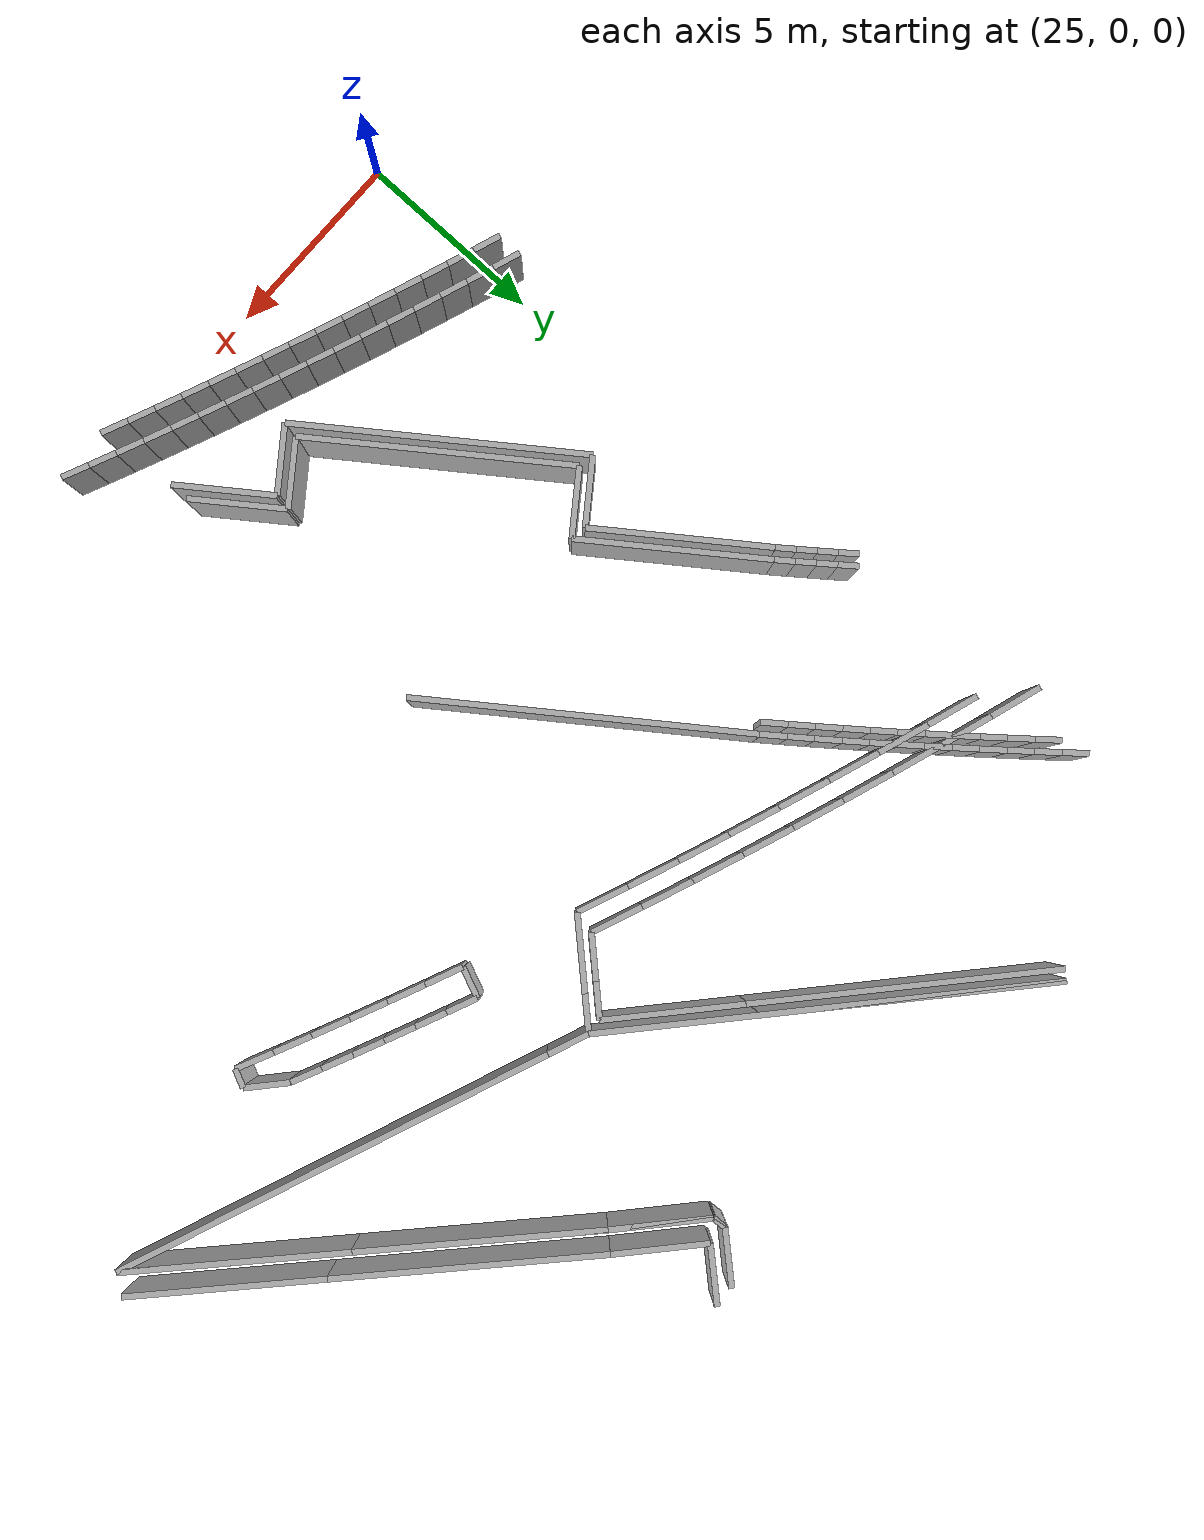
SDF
<sdf version="1.6">
 <model name="sps_0506">
  <static>1</static>
  <allow_auto_disable>0</allow_auto_disable>
  <link name="Wall104">
   <collision name="collision"><geometry><box><size>6.99921 0.15 2.5</size></box></geometry></collision>
   <visual name="visual">
    <geometry><box><size>6.99921 0.15 2.5</size></box></geometry>
    <transparency>0.0</transparency>
   </visual>
   <pose>29.4711 6.28789 1.25 0 0 -0.939945</pose>
  </link>
  <link name="Wall107">
   <collision name="collision"><geometry><box><size>1.55015 0.15 2.5</size></box></geometry></collision>
   <visual name="visual">
    <geometry><box><size>1.55015 0.15 2.5</size></box></geometry>
    <transparency>0.0</transparency>
   </visual>
   <pose>39.9011 24.8184 1.25 0 -0 0.84454</pose>
  </link>
  <link name="Wall109">
   <collision name="collision"><geometry><box><size>0.49973 0.15 2.5</size></box></geometry></collision>
   <visual name="visual">
    <geometry><box><size>0.49973 0.15 2.5</size></box></geometry>
    <transparency>0.0</transparency>
   </visual>
   <pose>44.1179 13.009 1.25 0 0 -2.00494</pose>
  </link>
  <link name="Wall110">
   <collision name="collision"><geometry><box><size>1.1591 0.15 2.5</size></box></geometry></collision>
   <visual name="visual">
    <geometry><box><size>1.1591 0.15 2.5</size></box></geometry>
    <transparency>0.0</transparency>
   </visual>
   <pose>43.7884 13.619 1.25 0 0 -0.722654</pose>
  </link>
  <link name="Wall113">
   <collision name="collision"><geometry><box><size>6.27489 0.15 2.5</size></box></geometry></collision>
   <visual name="visual">
    <geometry><box><size>6.27489 0.15 2.5</size></box></geometry>
    <transparency>0.0</transparency>
   </visual>
   <pose>43.1125 20.0304 1.25 0 0 -0.749431</pose>
  </link>
  <link name="Wall114">
   <collision name="collision"><geometry><box><size>5.77521 0.15 2.5</size></box></geometry></collision>
   <visual name="visual">
    <geometry><box><size>5.77521 0.15 2.5</size></box></geometry>
    <transparency>0.0</transparency>
   </visual>
   <pose>47.5233 15.926 1.25 0 0 -0.749431</pose>
  </link>
  <link name="Wall144">
   <collision name="collision"><geometry><box><size>8.69656 0.15 2.5</size></box></geometry></collision>
   <visual name="visual">
    <geometry><box><size>8.69656 0.15 2.5</size></box></geometry>
    <transparency>0.0</transparency>
   </visual>
   <pose>31.9048 13.297 1.25 0 -0 2.2016</pose>
  </link>
  <link name="Wall486">
   <collision name="collision"><geometry><box><size>4.68089 0.15 2.5</size></box></geometry></collision>
   <visual name="visual">
    <geometry><box><size>4.68089 0.15 2.5</size></box></geometry>
    <transparency>0.0</transparency>
   </visual>
   <pose>27.061 12.1316 1.25 0 0 -0.940045</pose>
  </link>
  <link name="Wall487">
   <collision name="collision"><geometry><box><size>1.8003 0.15 2.5</size></box></geometry></collision>
   <visual name="visual">
    <geometry><box><size>1.8003 0.15 2.5</size></box></geometry>
    <transparency>0.0</transparency>
   </visual>
   <pose>28.1337 9.645 1.25 0 0 -2.51052</pose>
  </link>
  <link name="Wall488">
   <collision name="collision"><geometry><box><size>4.98693 0.15 2.5</size></box></geometry></collision>
   <visual name="visual">
    <geometry><box><size>4.98693 0.15 2.5</size></box></geometry>
    <transparency>0.0</transparency>
   </visual>
   <pose>27.3896 12.1896 1.25 0 0 -0.939912</pose>
  </link>
  <link name="Wall489">
   <collision name="collision"><geometry><box><size>7.59147 0.15 2.5</size></box></geometry></collision>
   <visual name="visual">
    <geometry><box><size>7.59147 0.15 2.5</size></box></geometry>
    <transparency>0.0</transparency>
   </visual>
   <pose>31.6313 23.9044 1.25 0 0 -0.726192</pose>
  </link>
  <link name="Wall490">
   <collision name="collision"><geometry><box><size>4.16825 0.15 2.5</size></box></geometry></collision>
   <visual name="visual">
    <geometry><box><size>4.16825 0.15 2.5</size></box></geometry>
    <transparency>0.0</transparency>
   </visual>
   <pose>36.0278 20 1.25 0 0 -0.726192</pose>
  </link>
  <link name="Wall823">
   <collision name="collision"><geometry><box><size>1.80035 0.15 2.5</size></box></geometry></collision>
   <visual name="visual">
    <geometry><box><size>1.80035 0.15 2.5</size></box></geometry>
    <transparency>0.0</transparency>
   </visual>
   <pose>27.7144 9.71037 1.25 0 0 -2.51054</pose>
  </link>
  <link name="Wall824">
   <collision name="collision"><geometry><box><size>7.59909 0.15 2.5</size></box></geometry></collision>
   <visual name="visual">
    <geometry><box><size>7.59909 0.15 2.5</size></box></geometry>
    <transparency>0.0</transparency>
   </visual>
   <pose>29.2286 6.11098 1.25 0 0 -0.939976</pose>
  </link>
  <link name="Wall825">
   <collision name="collision"><geometry><box><size>1.80066 0.15 2.5</size></box></geometry></collision>
   <visual name="visual">
    <geometry><box><size>1.80066 0.15 2.5</size></box></geometry>
    <transparency>0.0</transparency>
   </visual>
   <pose>32.1968 3.5735 1.25 0 -0 0.630546</pose>
  </link>
  <link name="Wall826">
   <collision name="collision"><geometry><box><size>0.980486 0.15 2.5</size></box></geometry></collision>
   <visual name="visual">
    <geometry><box><size>0.980486 0.15 2.5</size></box></geometry>
    <transparency>0.0</transparency>
   </visual>
   <pose>37.255 18.2546 1.25 0 0 -2.31236</pose>
  </link>
  <link name="Wall827">
   <collision name="collision"><geometry><box><size>2.00484 0.15 2.5</size></box></geometry></collision>
   <visual name="visual">
    <geometry><box><size>2.00484 0.15 2.5</size></box></geometry>
    <transparency>0.0</transparency>
   </visual>
   <pose>36.2467 17.1539 1.25 0 0 -2.31236</pose>
  </link>
  <link name="Wall1239">
   <collision name="collision"><geometry><box><size>2.45108 0.15 2.5</size></box></geometry></collision>
   <visual name="visual">
    <geometry><box><size>2.45108 0.15 2.5</size></box></geometry>
    <transparency>0.0</transparency>
   </visual>
   <pose>40.3028 23.4252 1.25 0 -0 2.41548</pose>
  </link>
  <link name="Wall1531">
   <collision name="collision"><geometry><box><size>1.20544 0.15 2.5</size></box></geometry></collision>
   <visual name="visual">
    <geometry><box><size>1.20544 0.15 2.5</size></box></geometry>
    <transparency>0.0</transparency>
   </visual>
   <pose>36.1128 17.4496 1.25 0 -0 0.826845</pose>
  </link>
  <link name="Wall1532">
   <collision name="collision"><geometry><box><size>0.947549 0.15 2.5</size></box></geometry></collision>
   <visual name="visual">
    <geometry><box><size>0.947549 0.15 2.5</size></box></geometry>
    <transparency>0.0</transparency>
   </visual>
   <pose>36.8418 18.2417 1.25 0 -0 0.826845</pose>
  </link>
  <link name="Wall1533">
   <collision name="collision"><geometry><box><size>3.60227 0.15 2.5</size></box></geometry></collision>
   <visual name="visual">
    <geometry><box><size>3.60227 0.15 2.5</size></box></geometry>
    <transparency>0.0</transparency>
   </visual>
   <pose>35.8161 19.7864 1.25 0 -0 2.41531</pose>
  </link>
  <link name="Wall1534">
   <collision name="collision"><geometry><box><size>7.85363 0.15 2.5</size></box></geometry></collision>
   <visual name="visual">
    <geometry><box><size>7.85363 0.15 2.5</size></box></geometry>
    <transparency>0.0</transparency>
   </visual>
   <pose>31.5336 23.5903 1.25 0 -0 2.41531</pose>
  </link>
  <link name="Wall1536">
   <collision name="collision"><geometry><box><size>0.354007 0.15 2.5</size></box></geometry></collision>
   <visual name="visual">
    <geometry><box><size>0.354007 0.15 2.5</size></box></geometry>
    <transparency>0.0</transparency>
   </visual>
   <pose>38.8656 24.0664 1.25 0 0 -1.51491</pose>
  </link>
  <link name="Wall1537">
   <collision name="collision"><geometry><box><size>1.49997 0.15 2.5</size></box></geometry></collision>
   <visual name="visual">
    <geometry><box><size>1.49997 0.15 2.5</size></box></geometry>
    <transparency>0.0</transparency>
   </visual>
   <pose>39.3537 24.8039 1.25 0 0 -2.29695</pose>
  </link>
  <link name="Wall1846">
   <collision name="collision"><geometry><box><size>0.839474 0.15 2.5</size></box></geometry></collision>
   <visual name="visual">
    <geometry><box><size>0.839474 0.15 2.5</size></box></geometry>
    <transparency>0.0</transparency>
   </visual>
   <pose>38.5991 15.6241 1.25 0 -0 1.17451</pose>
  </link>
  <link name="Wall1848">
   <collision name="collision"><geometry><box><size>2.62022 0.15 2.5</size></box></geometry></collision>
   <visual name="visual">
    <geometry><box><size>2.62022 0.15 2.5</size></box></geometry>
    <transparency>0.0</transparency>
   </visual>
   <pose>33.6967 3.04635 1.25 0 0 -0.939982</pose>
  </link>
  <link name="Wall2188">
   <collision name="collision"><geometry><box><size>2.50991 0.15 2.5</size></box></geometry></collision>
   <visual name="visual">
    <geometry><box><size>2.50991 0.15 2.5</size></box></geometry>
    <transparency>0.0</transparency>
   </visual>
   <pose>33.7292 3.50931 1.25 0 0 -0.939954</pose>
  </link>
  <link name="Wall2191">
   <collision name="collision"><geometry><box><size>6.9261 0.15 2.5</size></box></geometry></collision>
   <visual name="visual">
    <geometry><box><size>6.9261 0.15 2.5</size></box></geometry>
    <transparency>0.0</transparency>
   </visual>
   <pose>43.7544 20.2523 1.25 0 0 -0.749464</pose>
  </link>
  <link name="Wall2192">
   <collision name="collision"><geometry><box><size>5.04841 0.15 2.5</size></box></geometry></collision>
   <visual name="visual">
    <geometry><box><size>5.04841 0.15 2.5</size></box></geometry>
    <transparency>0.0</transparency>
   </visual>
   <pose>48.1374 16.1735 1.25 0 0 -0.749464</pose>
  </link>
  <link name="Wall2566">
   <collision name="collision"><geometry><box><size>1.7997 0.15 2.5</size></box></geometry></collision>
   <visual name="visual">
    <geometry><box><size>1.7997 0.15 2.5</size></box></geometry>
    <transparency>0.0</transparency>
   </visual>
   <pose>32.2621 3.99229 1.25 0 -0 0.63039</pose>
  </link>
  <link name="Wall2570">
   <collision name="collision"><geometry><box><size>2.59414 0.15 2.5</size></box></geometry></collision>
   <visual name="visual">
    <geometry><box><size>2.59414 0.15 2.5</size></box></geometry>
    <transparency>0.0</transparency>
   </visual>
   <pose>39.8455 23.0287 1.25 0 0 -0.725886</pose>
  </link>
  <link name="Wall3657">
   <collision name="collision"><geometry><box><size>1.49985 0.15 2.5</size></box></geometry></collision>
   <visual name="visual">
    <geometry><box><size>1.49985 0.15 2.5</size></box></geometry>
    <transparency>0.0</transparency>
   </visual>
   <pose>39.3539 24.8039 1.25 0 0 -2.29685</pose>
  </link>
  <link name="Wall3658">
   <collision name="collision"><geometry><box><size>0.354011 0.15 2.5</size></box></geometry></collision>
   <visual name="visual">
    <geometry><box><size>0.354011 0.15 2.5</size></box></geometry>
    <transparency>0.0</transparency>
   </visual>
   <pose>38.866 24.0664 1.25 0 0 -1.51473</pose>
  </link>
  <link name="Wall3659">
   <collision name="collision"><geometry><box><size>2.594 0.15 2.5</size></box></geometry></collision>
   <visual name="visual">
    <geometry><box><size>2.594 0.15 2.5</size></box></geometry>
    <transparency>0.0</transparency>
   </visual>
   <pose>39.8459 23.0287 1.25 0 0 -0.725933</pose>
  </link>
  <link name="Wall3660">
   <collision name="collision"><geometry><box><size>12.0501 0.15 2.5</size></box></geometry></collision>
   <visual name="visual">
    <geometry><box><size>12.0501 0.15 2.5</size></box></geometry>
    <transparency>0.0</transparency>
   </visual>
   <pose>45.2267 18.0633 1.25 0 0 -0.749431</pose>
  </link>
  <link name="Wall3661">
   <collision name="collision"><geometry><box><size>11.8066 0.15 2.5</size></box></geometry></collision>
   <visual name="visual">
    <geometry><box><size>11.8066 0.15 2.5</size></box></geometry>
    <transparency>0.0</transparency>
   </visual>
   <pose>44.1311 16.0869 1.25 0 -0 2.77281</pose>
  </link>
  <link name="Wall3662">
   <collision name="collision"><geometry><box><size>1.1132 0.15 2.5</size></box></geometry></collision>
   <visual name="visual">
    <geometry><box><size>1.1132 0.15 2.5</size></box></geometry>
    <transparency>0.0</transparency>
   </visual>
   <pose>38.1055 18.4155 1.25 0 -0 2.77291</pose>
  </link>
  <link name="Wall3663">
   <collision name="collision"><geometry><box><size>11.7598 0.15 2.5</size></box></geometry></collision>
   <visual name="visual">
    <geometry><box><size>11.7598 0.15 2.5</size></box></geometry>
    <transparency>0.0</transparency>
   </visual>
   <pose>33.1899 22.5206 1.25 0 -0 2.41539</pose>
  </link>
  <link name="Wall6933">
   <collision name="collision"><geometry><box><size>0.83541 0.15 2.5</size></box></geometry></collision>
   <visual name="visual">
    <geometry><box><size>0.83541 0.15 2.5</size></box></geometry>
    <transparency>0.0</transparency>
   </visual>
   <pose>39.146 15.849 1.25 0 0 -0.39904</pose>
  </link>
  <link name="Wall6934">
   <collision name="collision"><geometry><box><size>0.83562 0.15 2.5</size></box></geometry></collision>
   <visual name="visual">
    <geometry><box><size>0.83562 0.15 2.5</size></box></geometry>
    <transparency>0.0</transparency>
   </visual>
   <pose>39.9149 15.5223 1.25 0 0 -0.404489</pose>
  </link>
  <link name="Wall6935">
   <collision name="collision"><geometry><box><size>0.835446 0.15 2.5</size></box></geometry></collision>
   <visual name="visual">
    <geometry><box><size>0.835446 0.15 2.5</size></box></geometry>
    <transparency>0.0</transparency>
   </visual>
   <pose>40.6822 15.1914 1.25 0 0 -0.409909</pose>
  </link>
  <link name="Wall6936">
   <collision name="collision"><geometry><box><size>0.835502 0.15 2.5</size></box></geometry></collision>
   <visual name="visual">
    <geometry><box><size>0.835502 0.15 2.5</size></box></geometry>
    <transparency>0.0</transparency>
   </visual>
   <pose>41.4476 14.8565 1.25 0 0 -0.414983</pose>
  </link>
  <link name="Wall6937">
   <collision name="collision"><geometry><box><size>0.835543 0.15 2.5</size></box></geometry></collision>
   <visual name="visual">
    <geometry><box><size>0.835543 0.15 2.5</size></box></geometry>
    <transparency>0.0</transparency>
   </visual>
   <pose>42.2113 14.5176 1.25 0 0 -0.420316</pose>
  </link>
  <link name="Wall6938">
   <collision name="collision"><geometry><box><size>0.835476 0.15 2.5</size></box></geometry></collision>
   <visual name="visual">
    <geometry><box><size>0.835476 0.15 2.5</size></box></geometry>
    <transparency>0.0</transparency>
   </visual>
   <pose>42.9732 14.1747 1.25 0 0 -0.425479</pose>
  </link>
  <link name="Wall7009">
   <collision name="collision"><geometry><box><size>0.737231 0.15 2.5</size></box></geometry></collision>
   <visual name="visual">
    <geometry><box><size>0.737231 0.15 2.5</size></box></geometry>
    <transparency>0.0</transparency>
   </visual>
   <pose>35.8034 0.0269917 1.25 0 -0 2.72098</pose>
  </link>
  <link name="Wall7010">
   <collision name="collision"><geometry><box><size>0.73735 0.15 2.5</size></box></geometry></collision>
   <visual name="visual">
    <geometry><box><size>0.73735 0.15 2.5</size></box></geometry>
    <transparency>0.0</transparency>
   </visual>
   <pose>35.1296 0.326308 1.25 0 -0 2.72613</pose>
  </link>
  <link name="Wall7011">
   <collision name="collision"><geometry><box><size>0.737191 0.15 2.5</size></box></geometry></collision>
   <visual name="visual">
    <geometry><box><size>0.737191 0.15 2.5</size></box></geometry>
    <transparency>0.0</transparency>
   </visual>
   <pose>34.4542 0.622115 1.25 0 -0 2.73136</pose>
  </link>
  <link name="Wall7012">
   <collision name="collision"><geometry><box><size>0.737461 0.15 2.5</size></box></geometry></collision>
   <visual name="visual">
    <geometry><box><size>0.737461 0.15 2.5</size></box></geometry>
    <transparency>0.0</transparency>
   </visual>
   <pose>33.7773 0.914412 1.25 0 -0 2.73657</pose>
  </link>
  <link name="Wall7013">
   <collision name="collision"><geometry><box><size>0.737117 0.15 2.5</size></box></geometry></collision>
   <visual name="visual">
    <geometry><box><size>0.737117 0.15 2.5</size></box></geometry>
    <transparency>0.0</transparency>
   </visual>
   <pose>33.099 1.2032 1.25 0 -0 2.74168</pose>
  </link>
  <link name="Wall7014">
   <collision name="collision"><geometry><box><size>0.737314 0.15 2.5</size></box></geometry></collision>
   <visual name="visual">
    <geometry><box><size>0.737314 0.15 2.5</size></box></geometry>
    <transparency>0.0</transparency>
   </visual>
   <pose>32.4192 1.48848 1.25 0 -0 2.74682</pose>
  </link>
  <link name="Wall7015">
   <collision name="collision"><geometry><box><size>0.737328 0.15 2.5</size></box></geometry></collision>
   <visual name="visual">
    <geometry><box><size>0.737328 0.15 2.5</size></box></geometry>
    <transparency>0.0</transparency>
   </visual>
   <pose>31.7379 1.77037 1.25 0 -0 2.75176</pose>
  </link>
  <link name="Wall7016">
   <collision name="collision"><geometry><box><size>0.737369 0.15 2.5</size></box></geometry></collision>
   <visual name="visual">
    <geometry><box><size>0.737369 0.15 2.5</size></box></geometry>
    <transparency>0.0</transparency>
   </visual>
   <pose>31.0551 2.04869 1.25 0 -0 2.75732</pose>
  </link>
  <link name="Wall7017">
   <collision name="collision"><geometry><box><size>0.737228 0.15 2.5</size></box></geometry></collision>
   <visual name="visual">
    <geometry><box><size>0.737228 0.15 2.5</size></box></geometry>
    <transparency>0.0</transparency>
   </visual>
   <pose>30.3709 2.32341 1.25 0 -0 2.76224</pose>
  </link>
  <link name="Wall7018">
   <collision name="collision"><geometry><box><size>0.737209 0.15 2.5</size></box></geometry></collision>
   <visual name="visual">
    <geometry><box><size>0.737209 0.15 2.5</size></box></geometry>
    <transparency>0.0</transparency>
   </visual>
   <pose>29.6854 2.59462 1.25 0 -0 2.76748</pose>
  </link>
  <link name="Wall7019">
   <collision name="collision"><geometry><box><size>0.737446 0.15 2.5</size></box></geometry></collision>
   <visual name="visual">
    <geometry><box><size>0.737446 0.15 2.5</size></box></geometry>
    <transparency>0.0</transparency>
   </visual>
   <pose>28.9983 2.86232 1.25 0 -0 2.77258</pose>
  </link>
  <link name="Wall7020">
   <collision name="collision"><geometry><box><size>0.737402 0.15 2.5</size></box></geometry></collision>
   <visual name="visual">
    <geometry><box><size>0.737402 0.15 2.5</size></box></geometry>
    <transparency>0.0</transparency>
   </visual>
   <pose>28.3098 3.12642 1.25 0 -0 2.77806</pose>
  </link>
  <link name="Wall7021">
   <collision name="collision"><geometry><box><size>0.737279 0.15 2.5</size></box></geometry></collision>
   <visual name="visual">
    <geometry><box><size>0.737279 0.15 2.5</size></box></geometry>
    <transparency>0.0</transparency>
   </visual>
   <pose>27.62 3.38692 1.25 0 -0 2.78295</pose>
  </link>
  <link name="Wall7022">
   <collision name="collision"><geometry><box><size>0.737397 0.15 2.5</size></box></geometry></collision>
   <visual name="visual">
    <geometry><box><size>0.737397 0.15 2.5</size></box></geometry>
    <transparency>0.0</transparency>
   </visual>
   <pose>26.9289 3.6439 1.25 0 -0 2.78822</pose>
  </link>
  <link name="Wall7023">
   <collision name="collision"><geometry><box><size>0.737249 0.15 2.5</size></box></geometry></collision>
   <visual name="visual">
    <geometry><box><size>0.737249 0.15 2.5</size></box></geometry>
    <transparency>0.0</transparency>
   </visual>
   <pose>26.2365 3.89729 1.25 0 -0 2.79335</pose>
  </link>
  <link name="Wall7024">
   <collision name="collision"><geometry><box><size>0.737349 0.15 2.5</size></box></geometry></collision>
   <visual name="visual">
    <geometry><box><size>0.737349 0.15 2.5</size></box></geometry>
    <transparency>0.0</transparency>
   </visual>
   <pose>25.5428 4.14708 1.25 0 -0 2.79859</pose>
  </link>
  <link name="Wall7025">
   <collision name="collision"><geometry><box><size>0.737179 0.15 2.5</size></box></geometry></collision>
   <visual name="visual">
    <geometry><box><size>0.737179 0.15 2.5</size></box></geometry>
    <transparency>0.0</transparency>
   </visual>
   <pose>24.8479 4.39317 1.25 0 -0 2.80395</pose>
  </link>
  <link name="Wall16699">
   <collision name="collision"><geometry><box><size>1.393 0.15 2.5</size></box></geometry></collision>
   <visual name="visual">
    <geometry><box><size>1.393 0.15 2.5</size></box></geometry>
    <transparency>0.0</transparency>
   </visual>
   <pose>35.0558 17.2592 1.25 0 -0 2.76972</pose>
  </link>
  <link name="Wall16700">
   <collision name="collision"><geometry><box><size>1.39302 0.15 2.5</size></box></geometry></collision>
   <visual name="visual">
    <geometry><box><size>1.39302 0.15 2.5</size></box></geometry>
    <transparency>0.0</transparency>
   </visual>
   <pose>33.7558 17.7596 1.25 0 -0 2.7786</pose>
  </link>
  <link name="Wall16701">
   <collision name="collision"><geometry><box><size>1.39305 0.15 2.5</size></box></geometry></collision>
   <visual name="visual">
    <geometry><box><size>1.39305 0.15 2.5</size></box></geometry>
    <transparency>0.0</transparency>
   </visual>
   <pose>32.4513 18.2485 1.25 0 -0 2.7874</pose>
  </link>
  <link name="Wall16702">
   <collision name="collision"><geometry><box><size>1.39323 0.15 2.5</size></box></geometry></collision>
   <visual name="visual">
    <geometry><box><size>1.39323 0.15 2.5</size></box></geometry>
    <transparency>0.0</transparency>
   </visual>
   <pose>31.1426 18.7259 1.25 0 -0 2.79626</pose>
  </link>
  <link name="Wall16703">
   <collision name="collision"><geometry><box><size>1.39297 0.15 2.5</size></box></geometry></collision>
   <visual name="visual">
    <geometry><box><size>1.39297 0.15 2.5</size></box></geometry>
    <transparency>0.0</transparency>
   </visual>
   <pose>29.8297 19.1917 1.25 0 -0 2.80503</pose>
  </link>
  <link name="Wall16704">
   <collision name="collision"><geometry><box><size>1.39323 0.15 2.5</size></box></geometry></collision>
   <visual name="visual">
    <geometry><box><size>1.39323 0.15 2.5</size></box></geometry>
    <transparency>0.0</transparency>
   </visual>
   <pose>28.5127 19.646 1.25 0 -0 2.81376</pose>
  </link>
  <link name="Wall16705">
   <collision name="collision"><geometry><box><size>1.393 0.15 2.5</size></box></geometry></collision>
   <visual name="visual">
    <geometry><box><size>1.393 0.15 2.5</size></box></geometry>
    <transparency>0.0</transparency>
   </visual>
   <pose>27.1919 20.0887 1.25 0 -0 2.82267</pose>
  </link>
  <link name="Wall16706">
   <collision name="collision"><geometry><box><size>1.39301 0.15 2.5</size></box></geometry></collision>
   <visual name="visual">
    <geometry><box><size>1.39301 0.15 2.5</size></box></geometry>
    <transparency>0.0</transparency>
   </visual>
   <pose>25.8672 20.5196 1.25 0 -0 2.83156</pose>
  </link>
  <link name="Wall16707">
   <collision name="collision"><geometry><box><size>1.39321 0.15 2.5</size></box></geometry></collision>
   <visual name="visual">
    <geometry><box><size>1.39321 0.15 2.5</size></box></geometry>
    <transparency>0.0</transparency>
   </visual>
   <pose>24.5387 20.9388 1.25 0 -0 2.84029</pose>
  </link>
  <link name="Wall16764">
   <collision name="collision"><geometry><box><size>0.729245 0.15 2.5</size></box></geometry></collision>
   <visual name="visual">
    <geometry><box><size>0.729245 0.15 2.5</size></box></geometry>
    <transparency>0.0</transparency>
   </visual>
   <pose>34.3527 0.00630083 1.25 0 -0 2.73018</pose>
  </link>
  <link name="Wall16765">
   <collision name="collision"><geometry><box><size>0.729078 0.15 2.5</size></box></geometry></collision>
   <visual name="visual">
    <geometry><box><size>0.729078 0.15 2.5</size></box></geometry>
    <transparency>0.0</transparency>
   </visual>
   <pose>33.6836 0.296096 1.25 0 -0 2.73556</pose>
  </link>
  <link name="Wall16766">
   <collision name="collision"><geometry><box><size>0.729291 0.15 2.5</size></box></geometry></collision>
   <visual name="visual">
    <geometry><box><size>0.729291 0.15 2.5</size></box></geometry>
    <transparency>0.0</transparency>
   </visual>
   <pose>33.013 0.582473 1.25 0 -0 2.74042</pose>
  </link>
  <link name="Wall16767">
   <collision name="collision"><geometry><box><size>0.729042 0.15 2.5</size></box></geometry></collision>
   <visual name="visual">
    <geometry><box><size>0.729042 0.15 2.5</size></box></geometry>
    <transparency>0.0</transparency>
   </visual>
   <pose>32.341 0.865493 1.25 0 -0 2.74554</pose>
  </link>
  <link name="Wall16768">
   <collision name="collision"><geometry><box><size>0.729174 0.15 2.5</size></box></geometry></collision>
   <visual name="visual">
    <geometry><box><size>0.729174 0.15 2.5</size></box></geometry>
    <transparency>0.0</transparency>
   </visual>
   <pose>31.6676 1.145 1.25 0 -0 2.75078</pose>
  </link>
  <link name="Wall16769">
   <collision name="collision"><geometry><box><size>0.729202 0.15 2.5</size></box></geometry></collision>
   <visual name="visual">
    <geometry><box><size>0.729202 0.15 2.5</size></box></geometry>
    <transparency>0.0</transparency>
   </visual>
   <pose>30.9927 1.4211 1.25 0 -0 2.75577</pose>
  </link>
  <link name="Wall16770">
   <collision name="collision"><geometry><box><size>0.729158 0.15 2.5</size></box></geometry></collision>
   <visual name="visual">
    <geometry><box><size>0.729158 0.15 2.5</size></box></geometry>
    <transparency>0.0</transparency>
   </visual>
   <pose>30.3164 1.69371 1.25 0 -0 2.76107</pose>
  </link>
  <link name="Wall16771">
   <collision name="collision"><geometry><box><size>0.729201 0.15 2.5</size></box></geometry></collision>
   <visual name="visual">
    <geometry><box><size>0.729201 0.15 2.5</size></box></geometry>
    <transparency>0.0</transparency>
   </visual>
   <pose>29.6387 1.96281 1.25 0 -0 2.76614</pose>
  </link>
  <link name="Wall16772">
   <collision name="collision"><geometry><box><size>0.729197 0.15 2.5</size></box></geometry></collision>
   <visual name="visual">
    <geometry><box><size>0.729197 0.15 2.5</size></box></geometry>
    <transparency>0.0</transparency>
   </visual>
   <pose>28.9596 2.22841 1.25 0 -0 2.77144</pose>
  </link>
  <link name="Wall16773">
   <collision name="collision"><geometry><box><size>0.729279 0.15 2.5</size></box></geometry></collision>
   <visual name="visual">
    <geometry><box><size>0.729279 0.15 2.5</size></box></geometry>
    <transparency>0.0</transparency>
   </visual>
   <pose>28.279 2.49049 1.25 0 -0 2.7765</pose>
  </link>
  <link name="Wall16774">
   <collision name="collision"><geometry><box><size>0.729107 0.15 2.5</size></box></geometry></collision>
   <visual name="visual">
    <geometry><box><size>0.729107 0.15 2.5</size></box></geometry>
    <transparency>0.0</transparency>
   </visual>
   <pose>27.5973 2.7491 1.25 0 -0 2.78161</pose>
  </link>
  <link name="Wall16775">
   <collision name="collision"><geometry><box><size>0.729034 0.15 2.5</size></box></geometry></collision>
   <visual name="visual">
    <geometry><box><size>0.729034 0.15 2.5</size></box></geometry>
    <transparency>0.0</transparency>
   </visual>
   <pose>26.9143 3.0042 1.25 0 -0 2.78666</pose>
  </link>
  <link name="Wall16776">
   <collision name="collision"><geometry><box><size>0.729359 0.15 2.5</size></box></geometry></collision>
   <visual name="visual">
    <geometry><box><size>0.729359 0.15 2.5</size></box></geometry>
    <transparency>0.0</transparency>
   </visual>
   <pose>26.2299 3.25578 1.25 0 -0 2.792</pose>
  </link>
  <link name="Wall16777">
   <collision name="collision"><geometry><box><size>0.728995 0.15 2.5</size></box></geometry></collision>
   <visual name="visual">
    <geometry><box><size>0.728995 0.15 2.5</size></box></geometry>
    <transparency>0.0</transparency>
   </visual>
   <pose>25.5442 3.5038 1.25 0 -0 2.79707</pose>
  </link>
  <link name="Wall16778">
   <collision name="collision"><geometry><box><size>0.729229 0.15 2.5</size></box></geometry></collision>
   <visual name="visual">
    <geometry><box><size>0.729229 0.15 2.5</size></box></geometry>
    <transparency>0.0</transparency>
   </visual>
   <pose>24.8573 3.74831 1.25 0 -0 2.80216</pose>
  </link>
  <link name="Wall19204">
   <collision name="collision"><geometry><box><size>0.516905 0.15 2.5</size></box></geometry></collision>
   <visual name="visual">
    <geometry><box><size>0.516905 0.15 2.5</size></box></geometry>
    <transparency>0.0</transparency>
   </visual>
   <pose>25.5237 14.227 1.25 0 -0 2.22372</pose>
  </link>
  <link name="Wall19205">
   <collision name="collision"><geometry><box><size>0.516695 0.15 2.5</size></box></geometry></collision>
   <visual name="visual">
    <geometry><box><size>0.516695 0.15 2.5</size></box></geometry>
    <transparency>0.0</transparency>
   </visual>
   <pose>25.2089 14.6369 1.25 0 -0 2.22746</pose>
  </link>
  <link name="Wall19206">
   <collision name="collision"><geometry><box><size>0.516841 0.15 2.5</size></box></geometry></collision>
   <visual name="visual">
    <geometry><box><size>0.516841 0.15 2.5</size></box></geometry>
    <transparency>0.0</transparency>
   </visual>
   <pose>24.8928 15.0457 1.25 0 -0 2.23052</pose>
  </link>
  <link name="Wall19207">
   <collision name="collision"><geometry><box><size>0.516788 0.15 2.5</size></box></geometry></collision>
   <visual name="visual">
    <geometry><box><size>0.516788 0.15 2.5</size></box></geometry>
    <transparency>0.0</transparency>
   </visual>
   <pose>24.5754 15.4535 1.25 0 -0 2.23405</pose>
  </link>
  <link name="Wall19336">
   <collision name="collision"><geometry><box><size>1.0155 0.15 2.5</size></box></geometry></collision>
   <visual name="visual">
    <geometry><box><size>1.0155 0.15 2.5</size></box></geometry>
    <transparency>0.0</transparency>
   </visual>
   <pose>38.9051 15.04 1.25 0 0 -0.398231</pose>
  </link>
  <link name="Wall19337">
   <collision name="collision"><geometry><box><size>1.01536 0.15 2.5</size></box></geometry></collision>
   <visual name="visual">
    <geometry><box><size>1.01536 0.15 2.5</size></box></geometry>
    <transparency>0.0</transparency>
   </visual>
   <pose>39.8397 14.643 1.25 0 0 -0.405144</pose>
  </link>
  <link name="Wall19338">
   <collision name="collision"><geometry><box><size>1.01539 0.15 2.5</size></box></geometry></collision>
   <visual name="visual">
    <geometry><box><size>1.01539 0.15 2.5</size></box></geometry>
    <transparency>0.0</transparency>
   </visual>
   <pose>40.7715 14.2398 1.25 0 0 -0.411553</pose>
  </link>
  <link name="Wall19339">
   <collision name="collision"><geometry><box><size>1.01533 0.15 2.5</size></box></geometry></collision>
   <visual name="visual">
    <geometry><box><size>1.01533 0.15 2.5</size></box></geometry>
    <transparency>0.0</transparency>
   </visual>
   <pose>41.7007 13.8305 1.25 0 0 -0.418279</pose>
  </link>
  <link name="Wall19340">
   <collision name="collision"><geometry><box><size>1.01559 0.15 2.5</size></box></geometry></collision>
   <visual name="visual">
    <geometry><box><size>1.01559 0.15 2.5</size></box></geometry>
    <transparency>0.0</transparency>
   </visual>
   <pose>42.6274 13.4153 1.25 0 0 -0.424156</pose>
  </link>
  <link name="Wall19341">
   <collision name="collision"><geometry><box><size>1.01538 0.15 2.5</size></box></geometry></collision>
   <visual name="visual">
    <geometry><box><size>1.01538 0.15 2.5</size></box></geometry>
    <transparency>0.0</transparency>
   </visual>
   <pose>43.5515 12.9943 1.25 0 0 -0.430791</pose>
  </link>
  <link name="Wall21163">
   <collision name="collision"><geometry><box><size>1.39251 0.15 2.5</size></box></geometry></collision>
   <visual name="visual">
    <geometry><box><size>1.39251 0.15 2.5</size></box></geometry>
    <transparency>0.0</transparency>
   </visual>
   <pose>34.9212 16.6681 1.25 0 -0 2.76906</pose>
  </link>
  <link name="Wall21164">
   <collision name="collision"><geometry><box><size>1.39264 0.15 2.5</size></box></geometry></collision>
   <visual name="visual">
    <geometry><box><size>1.39264 0.15 2.5</size></box></geometry>
    <transparency>0.0</transparency>
   </visual>
   <pose>33.6218 17.1691 1.25 0 -0 2.77807</pose>
  </link>
  <link name="Wall21165">
   <collision name="collision"><geometry><box><size>1.39245 0.15 2.5</size></box></geometry></collision>
   <visual name="visual">
    <geometry><box><size>1.39245 0.15 2.5</size></box></geometry>
    <transparency>0.0</transparency>
   </visual>
   <pose>32.3181 17.6585 1.25 0 -0 2.78692</pose>
  </link>
  <link name="Wall21166">
   <collision name="collision"><geometry><box><size>1.39269 0.15 2.5</size></box></geometry></collision>
   <visual name="visual">
    <geometry><box><size>1.39269 0.15 2.5</size></box></geometry>
    <transparency>0.0</transparency>
   </visual>
   <pose>31.0102 18.1364 1.25 0 -0 2.79566</pose>
  </link>
  <link name="Wall21167">
   <collision name="collision"><geometry><box><size>1.39269 0.15 2.5</size></box></geometry></collision>
   <visual name="visual">
    <geometry><box><size>1.39269 0.15 2.5</size></box></geometry>
    <transparency>0.0</transparency>
   </visual>
   <pose>29.6979 18.6027 1.25 0 -0 2.80468</pose>
  </link>
  <link name="Wall21168">
   <collision name="collision"><geometry><box><size>1.3926 0.15 2.5</size></box></geometry></collision>
   <visual name="visual">
    <geometry><box><size>1.3926 0.15 2.5</size></box></geometry>
    <transparency>0.0</transparency>
   </visual>
   <pose>28.3816 19.0574 1.25 0 -0 2.81333</pose>
  </link>
  <link name="Wall21169">
   <collision name="collision"><geometry><box><size>1.39273 0.15 2.5</size></box></geometry></collision>
   <visual name="visual">
    <geometry><box><size>1.39273 0.15 2.5</size></box></geometry>
    <transparency>0.0</transparency>
   </visual>
   <pose>27.0612 19.5004 1.25 0 -0 2.82242</pose>
  </link>
  <link name="Wall21170">
   <collision name="collision"><geometry><box><size>1.39273 0.15 2.5</size></box></geometry></collision>
   <visual name="visual">
    <geometry><box><size>1.39273 0.15 2.5</size></box></geometry>
    <transparency>0.0</transparency>
   </visual>
   <pose>25.737 19.9316 1.25 0 -0 2.83118</pose>
  </link>
  <link name="Wall24883">
   <collision name="collision"><geometry><box><size>0.52318 0.15 2.5</size></box></geometry></collision>
   <visual name="visual">
    <geometry><box><size>0.52318 0.15 2.5</size></box></geometry>
    <transparency>0.0</transparency>
   </visual>
   <pose>25.7599 14.4109 1.25 0 -0 2.22365</pose>
  </link>
  <link name="Wall24884">
   <collision name="collision"><geometry><box><size>0.523077 0.15 2.5</size></box></geometry></collision>
   <visual name="visual">
    <geometry><box><size>0.523077 0.15 2.5</size></box></geometry>
    <transparency>0.0</transparency>
   </visual>
   <pose>25.4415 14.8259 1.25 0 -0 2.22704</pose>
  </link>
  <link name="Wall24885">
   <collision name="collision"><geometry><box><size>0.523152 0.15 2.5</size></box></geometry></collision>
   <visual name="visual">
    <geometry><box><size>0.523152 0.15 2.5</size></box></geometry>
    <transparency>0.0</transparency>
   </visual>
   <pose>25.1216 15.2398 1.25 0 -0 2.23047</pose>
  </link>
  <link name="Wall24886">
   <collision name="collision"><geometry><box><size>0.523243 0.15 2.5</size></box></geometry></collision>
   <visual name="visual">
    <geometry><box><size>0.523243 0.15 2.5</size></box></geometry>
    <transparency>0.0</transparency>
   </visual>
   <pose>24.8003 15.6527 1.25 0 -0 2.23373</pose>
  </link>
  <link name="Wall24940">
   <collision name="collision"><geometry><box><size>0.673519 0.15 2.5</size></box></geometry></collision>
   <visual name="visual">
    <geometry><box><size>0.673519 0.15 2.5</size></box></geometry>
    <transparency>0.0</transparency>
   </visual>
   <pose>28.8974 16.8947 1.25 0 -0 2.22419</pose>
  </link>
  <link name="Wall24941">
   <collision name="collision"><geometry><box><size>0.6736 0.15 2.5</size></box></geometry></collision>
   <visual name="visual">
    <geometry><box><size>0.6736 0.15 2.5</size></box></geometry>
    <transparency>0.0</transparency>
   </visual>
   <pose>28.4868 17.4287 1.25 0 -0 2.22822</pose>
  </link>
  <link name="Wall24942">
   <collision name="collision"><geometry><box><size>0.673805 0.15 2.5</size></box></geometry></collision>
   <visual name="visual">
    <geometry><box><size>0.673805 0.15 2.5</size></box></geometry>
    <transparency>0.0</transparency>
   </visual>
   <pose>28.074 17.9611 1.25 0 -0 2.23245</pose>
  </link>
  <link name="Wall24943">
   <collision name="collision"><geometry><box><size>0.673572 0.15 2.5</size></box></geometry></collision>
   <visual name="visual">
    <geometry><box><size>0.673572 0.15 2.5</size></box></geometry>
    <transparency>0.0</transparency>
   </visual>
   <pose>27.6589 18.4917 1.25 0 -0 2.23686</pose>
  </link>
  <link name="Wall24944">
   <collision name="collision"><geometry><box><size>0.673688 0.15 2.5</size></box></geometry></collision>
   <visual name="visual">
    <geometry><box><size>0.673688 0.15 2.5</size></box></geometry>
    <transparency>0.0</transparency>
   </visual>
   <pose>27.2416 19.0205 1.25 0 -0 2.24088</pose>
  </link>
  <link name="Wall24945">
   <collision name="collision"><geometry><box><size>0.673738 0.15 2.5</size></box></geometry></collision>
   <visual name="visual">
    <geometry><box><size>0.673738 0.15 2.5</size></box></geometry>
    <transparency>0.0</transparency>
   </visual>
   <pose>26.822 19.5476 1.25 0 -0 2.24534</pose>
  </link>
  <link name="Wall24946">
   <collision name="collision"><geometry><box><size>0.673591 0.15 2.5</size></box></geometry></collision>
   <visual name="visual">
    <geometry><box><size>0.673591 0.15 2.5</size></box></geometry>
    <transparency>0.0</transparency>
   </visual>
   <pose>26.4002 20.0728 1.25 0 -0 2.2497</pose>
  </link>
  <link name="Wall24947">
   <collision name="collision"><geometry><box><size>0.673617 0.15 2.5</size></box></geometry></collision>
   <visual name="visual">
    <geometry><box><size>0.673617 0.15 2.5</size></box></geometry>
    <transparency>0.0</transparency>
   </visual>
   <pose>25.9762 20.5962 1.25 0 -0 2.25363</pose>
  </link>
  <link name="Wall24948">
   <collision name="collision"><geometry><box><size>0.673641 0.15 2.5</size></box></geometry></collision>
   <visual name="visual">
    <geometry><box><size>0.673641 0.15 2.5</size></box></geometry>
    <transparency>0.0</transparency>
   </visual>
   <pose>25.5499 21.1178 1.25 0 -0 2.2584</pose>
  </link>
  <link name="Wall24949">
   <collision name="collision"><geometry><box><size>0.673784 0.15 2.5</size></box></geometry></collision>
   <visual name="visual">
    <geometry><box><size>0.673784 0.15 2.5</size></box></geometry>
    <transparency>0.0</transparency>
   </visual>
   <pose>25.1213 21.6376 1.25 0 -0 2.26222</pose>
  </link>
  <link name="Wall24950">
   <collision name="collision"><geometry><box><size>0.67371 0.15 2.5</size></box></geometry></collision>
   <visual name="visual">
    <geometry><box><size>0.67371 0.15 2.5</size></box></geometry>
    <transparency>0.0</transparency>
   </visual>
   <pose>24.6905 22.1556 1.25 0 -0 2.2669</pose>
  </link>
  <link name="Wall24997">
   <collision name="collision"><geometry><box><size>0.674934 0.15 2.5</size></box></geometry></collision>
   <visual name="visual">
    <geometry><box><size>0.674934 0.15 2.5</size></box></geometry>
    <transparency>0.0</transparency>
   </visual>
   <pose>29.1352 17.0765 1.25 0 -0 2.22396</pose>
  </link>
  <link name="Wall24998">
   <collision name="collision"><geometry><box><size>0.67494 0.15 2.5</size></box></geometry></collision>
   <visual name="visual">
    <geometry><box><size>0.67494 0.15 2.5</size></box></geometry>
    <transparency>0.0</transparency>
   </visual>
   <pose>28.724 17.6117 1.25 0 -0 2.22783</pose>
  </link>
  <link name="Wall24999">
   <collision name="collision"><geometry><box><size>0.67495 0.15 2.5</size></box></geometry></collision>
   <visual name="visual">
    <geometry><box><size>0.67495 0.15 2.5</size></box></geometry>
    <transparency>0.0</transparency>
   </visual>
   <pose>28.3105 18.1452 1.25 0 -0 2.23228</pose>
  </link>
  <link name="Wall25000">
   <collision name="collision"><geometry><box><size>0.674974 0.15 2.5</size></box></geometry></collision>
   <visual name="visual">
    <geometry><box><size>0.674974 0.15 2.5</size></box></geometry>
    <transparency>0.0</transparency>
   </visual>
   <pose>27.8947 18.6769 1.25 0 -0 2.23672</pose>
  </link>
  <link name="Wall25001">
   <collision name="collision"><geometry><box><size>0.674832 0.15 2.5</size></box></geometry></collision>
   <visual name="visual">
    <geometry><box><size>0.674832 0.15 2.5</size></box></geometry>
    <transparency>0.0</transparency>
   </visual>
   <pose>27.4767 19.2068 1.25 0 -0 2.24069</pose>
  </link>
  <link name="Wall25002">
   <collision name="collision"><geometry><box><size>0.674929 0.15 2.5</size></box></geometry></collision>
   <visual name="visual">
    <geometry><box><size>0.674929 0.15 2.5</size></box></geometry>
    <transparency>0.0</transparency>
   </visual>
   <pose>27.0565 19.7349 1.25 0 -0 2.24509</pose>
  </link>
  <link name="Wall25003">
   <collision name="collision"><geometry><box><size>0.674992 0.15 2.5</size></box></geometry></collision>
   <visual name="visual">
    <geometry><box><size>0.674992 0.15 2.5</size></box></geometry>
    <transparency>0.0</transparency>
   </visual>
   <pose>26.634 20.2612 1.25 0 -0 2.24953</pose>
  </link>
  <link name="Wall25004">
   <collision name="collision"><geometry><box><size>0.675038 0.15 2.5</size></box></geometry></collision>
   <visual name="visual">
    <geometry><box><size>0.675038 0.15 2.5</size></box></geometry>
    <transparency>0.0</transparency>
   </visual>
   <pose>26.2091 20.7857 1.25 0 -0 2.25378</pose>
  </link>
  <link name="Wall25005">
   <collision name="collision"><geometry><box><size>0.67501 0.15 2.5</size></box></geometry></collision>
   <visual name="visual">
    <geometry><box><size>0.67501 0.15 2.5</size></box></geometry>
    <transparency>0.0</transparency>
   </visual>
   <pose>25.7819 21.3084 1.25 0 -0 2.25802</pose>
  </link>
  <link name="Wall25006">
   <collision name="collision"><geometry><box><size>0.674698 0.15 2.5</size></box></geometry></collision>
   <visual name="visual">
    <geometry><box><size>0.674698 0.15 2.5</size></box></geometry>
    <transparency>0.0</transparency>
   </visual>
   <pose>25.3527 21.8292 1.25 0 -0 2.26215</pose>
  </link>
  <link name="Wall25007">
   <collision name="collision"><geometry><box><size>0.674898 0.15 2.5</size></box></geometry></collision>
   <visual name="visual">
    <geometry><box><size>0.674898 0.15 2.5</size></box></geometry>
    <transparency>0.0</transparency>
   </visual>
   <pose>24.9213 22.3481 1.25 0 -0 2.26661</pose>
  </link>
  <link name="Wall25008">
   <collision name="collision"><geometry><box><size>0.675072 0.15 2.5</size></box></geometry></collision>
   <visual name="visual">
    <geometry><box><size>0.675072 0.15 2.5</size></box></geometry>
    <transparency>0.0</transparency>
   </visual>
   <pose>24.4875 22.8652 1.25 0 -0 2.271</pose>
  </link>
 </model>
</sdf>
